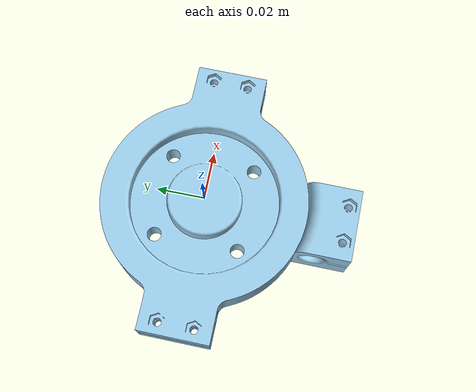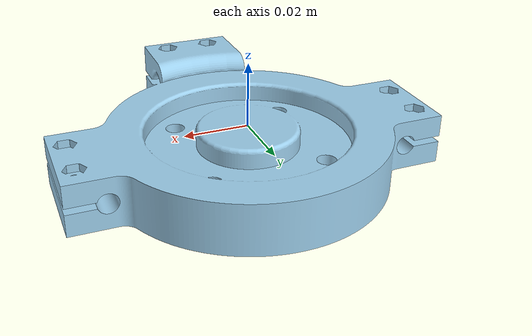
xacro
<?xml version="1.0"?>
<robot xmlns:xacro="http://wiki.ros.org/xacro" name="sensor_mount">

    <!-- Import macros -->
    <xacro:include filename="$(find armada_description)/sensor_mount/urdf/sensor_mount.urdf.xacro" />

    <link name="world" />
    <xacro:sensor_mount
        prefix=""
        parent="world"
    >
        <origin xyz="0 0 0" rpy="0 0 0" />
    </xacro:sensor_mount>
</robot>

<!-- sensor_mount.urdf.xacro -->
<robot xmlns:xacro="http://wiki.ros.org/xacro" name="sensor_mount">
    <xacro:macro name="sensor_mount" params="
        *origin
        prefix
        parent">

        <link name="${prefix}sensor_mount_base_link">
            <visual>
                <geometry>
                    <mesh filename="package://armada_description/sensor_mount/meshes/visual/base_link.dae" />
                </geometry>
            </visual>
            <collision>
                <geometry>
                    <mesh filename="package://armada_description/sensor_mount/meshes/collision/base_link.stl" />
                </geometry>
                <surface>
                    <friction>
                    <ode>
                        <mu1>100000.0</mu1>
                        <mu2>100000.0</mu2>
                    </ode>
                    </friction>
                    <contact>
                    <ode>
                        <kp>1e+5</kp>
                        <kd>1</kd>
                        <soft_cfm>0</soft_cfm>
                        <soft_erp>0.2</soft_erp>
                        <minDepth>0.002</minDepth>
                        <maxVel>0</maxVel>
                    </ode>
                    </contact>
                </surface>
            </collision>
            <inertial>
                <origin xyz="0 0 0" rpy="0 0 0"/>
                <mass value="0.01"/>
                <inertia
                    ixx="1e-4"
                    ixy="0"
                    ixz="0"
                    iyy="1e-4"
                    iyz="0"
                    izz="1e-4"/>
            </inertial>
        </link>

        <joint name="${prefix}sensor_mount_base_joint" type="fixed">
            <parent link="${parent}" />
            <child link="${prefix}sensor_mount_base_link" />
            <xacro:insert_block name="origin" />
        </joint>

        <!-- example joint for now -->

    </xacro:macro>
</robot>
